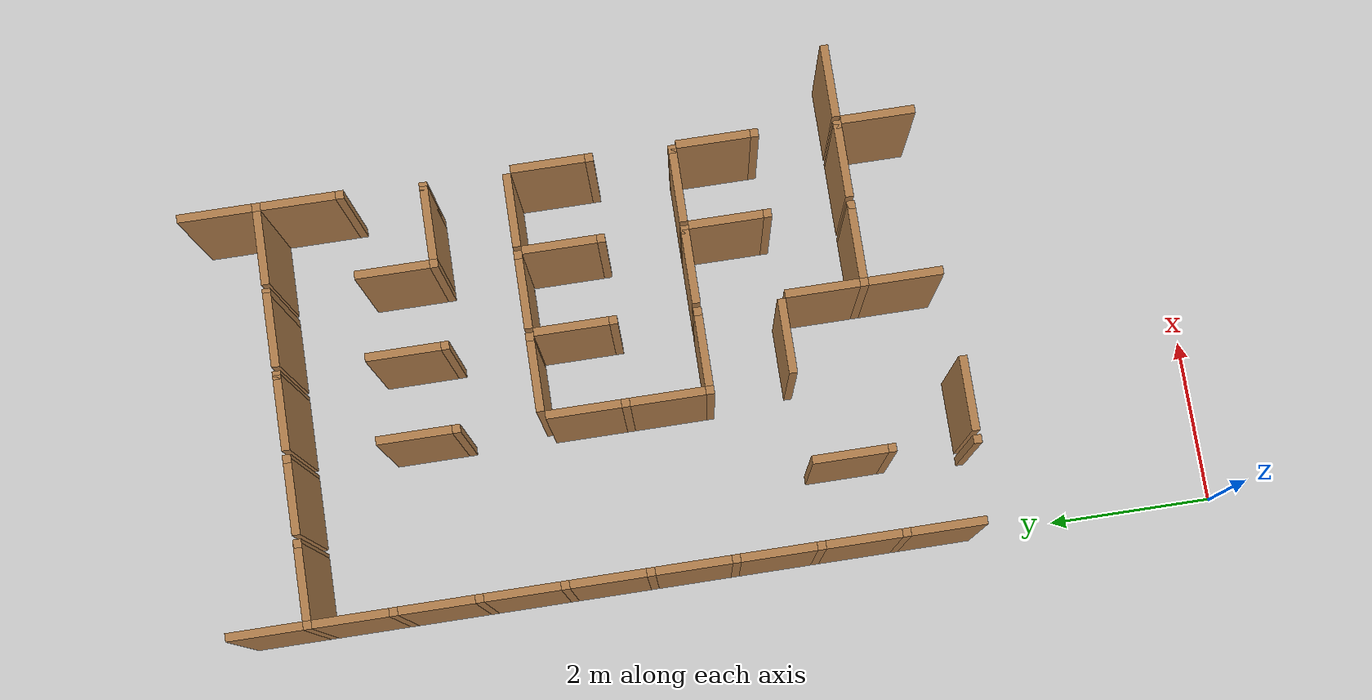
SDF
<sdf version="1.6">
 <world name="default">
  <include><uri>model://sun</uri></include>
  <model name="ground_plane">
   <static>true</static>
   <link name="link">
    <collision name="collision"><geometry><plane><size>12.0 12.0</size></plane></geometry></collision>
    <visual name="visual">
     <cast_shadows>false</cast_shadows>
     <geometry><plane><size>12.0 12.0</size></plane></geometry>
     <material>
      <script><uri>file://media/materials/scripts/gazebo.material</uri><name>Gazebo/Grey</name></script>
     </material>
    </visual>
   </link>
   <pose>6.0 6.0 0 0 0 0</pose>
  </model>
  <model name="vwall_3_0">
   <pose>0.0 3.5 1.0 0 0 0</pose>
   <link name="link">
    <collision name="collision"><geometry><box><size>0.1 0.9 2</size></box></geometry></collision>
    <visual name="visual">
     <geometry><box><size>0.1 0.9 2</size></box></geometry>
     <material>
      <script><uri>file://media/materials/scripts/gazebo.material</uri><name>Gazebo/Wood</name></script>
     </material>
    </visual>
   </link>
  </model>
  <model name="vwall_3_3">
   <pose>3.0 3.5 1.0 0 0 0</pose>
   <link name="link">
    <collision name="collision"><geometry><box><size>0.1 0.9 2</size></box></geometry></collision>
    <visual name="visual">
     <geometry><box><size>0.1 0.9 2</size></box></geometry>
     <material>
      <script><uri>file://media/materials/scripts/gazebo.material</uri><name>Gazebo/Wood</name></script>
     </material>
    </visual>
   </link>
  </model>
  <model name="vwall_3_5">
   <pose>5.0 3.5 1.0 0 0 0</pose>
   <link name="link">
    <collision name="collision"><geometry><box><size>0.1 0.9 2</size></box></geometry></collision>
    <visual name="visual">
     <geometry><box><size>0.1 0.9 2</size></box></geometry>
     <material>
      <script><uri>file://media/materials/scripts/gazebo.material</uri><name>Gazebo/Wood</name></script>
     </material>
    </visual>
   </link>
  </model>
  <model name="vwall_4_0">
   <pose>0.0 4.5 1.0 0 0 0</pose>
   <link name="link">
    <collision name="collision"><geometry><box><size>0.1 0.9 2</size></box></geometry></collision>
    <visual name="visual">
     <geometry><box><size>0.1 0.9 2</size></box></geometry>
     <material>
      <script><uri>file://media/materials/scripts/gazebo.material</uri><name>Gazebo/Wood</name></script>
     </material>
    </visual>
   </link>
  </model>
  <model name="joint_0.0_4.0">
   <pose>0.0 4.0 1.0 0 0 0</pose>
   <link name="link">
    <collision name="collision"><geometry><box><size>0.1 0.1 2</size></box></geometry></collision>
    <visual name="visual">
     <geometry><box><size>0.1 0.1 2</size></box></geometry>
     <material>
      <script><uri>file://media/materials/scripts/gazebo.material</uri><name>Gazebo/Wood</name></script>
     </material>
    </visual>
   </link>
  </model>
  <model name="vwall_4_1">
   <pose>1.0 4.5 1.0 0 0 0</pose>
   <link name="link">
    <collision name="collision"><geometry><box><size>0.1 0.9 2</size></box></geometry></collision>
    <visual name="visual">
     <geometry><box><size>0.1 0.9 2</size></box></geometry>
     <material>
      <script><uri>file://media/materials/scripts/gazebo.material</uri><name>Gazebo/Wood</name></script>
     </material>
    </visual>
   </link>
  </model>
  <model name="joint_1.0_4.0">
   <pose>1.0 4.0 1.0 0 0 0</pose>
   <link name="link">
    <collision name="collision"><geometry><box><size>0.1 0.1 2</size></box></geometry></collision>
    <visual name="visual">
     <geometry><box><size>0.1 0.1 2</size></box></geometry>
     <material>
      <script><uri>file://media/materials/scripts/gazebo.material</uri><name>Gazebo/Wood</name></script>
     </material>
    </visual>
   </link>
  </model>
  <model name="vwall_4_3">
   <pose>3.0 4.5 1.0 0 0 0</pose>
   <link name="link">
    <collision name="collision"><geometry><box><size>0.1 0.9 2</size></box></geometry></collision>
    <visual name="visual">
     <geometry><box><size>0.1 0.9 2</size></box></geometry>
     <material>
      <script><uri>file://media/materials/scripts/gazebo.material</uri><name>Gazebo/Wood</name></script>
     </material>
    </visual>
   </link>
  </model>
  <model name="joint_3.0_4.0">
   <pose>3.0 4.0 1.0 0 0 0</pose>
   <link name="link">
    <collision name="collision"><geometry><box><size>0.1 0.1 2</size></box></geometry></collision>
    <visual name="visual">
     <geometry><box><size>0.1 0.1 2</size></box></geometry>
     <material>
      <script><uri>file://media/materials/scripts/gazebo.material</uri><name>Gazebo/Wood</name></script>
     </material>
    </visual>
   </link>
  </model>
  <model name="vwall_5_0">
   <pose>0.0 5.5 1.0 0 0 0</pose>
   <link name="link">
    <collision name="collision"><geometry><box><size>0.1 0.9 2</size></box></geometry></collision>
    <visual name="visual">
     <geometry><box><size>0.1 0.9 2</size></box></geometry>
     <material>
      <script><uri>file://media/materials/scripts/gazebo.material</uri><name>Gazebo/Wood</name></script>
     </material>
    </visual>
   </link>
  </model>
  <model name="joint_0.0_5.0">
   <pose>0.0 5.0 1.0 0 0 0</pose>
   <link name="link">
    <collision name="collision"><geometry><box><size>0.1 0.1 2</size></box></geometry></collision>
    <visual name="visual">
     <geometry><box><size>0.1 0.1 2</size></box></geometry>
     <material>
      <script><uri>file://media/materials/scripts/gazebo.material</uri><name>Gazebo/Wood</name></script>
     </material>
    </visual>
   </link>
  </model>
  <model name="vwall_5_4">
   <pose>4.0 5.5 1.0 0 0 0</pose>
   <link name="link">
    <collision name="collision"><geometry><box><size>0.1 0.9 2</size></box></geometry></collision>
    <visual name="visual">
     <geometry><box><size>0.1 0.9 2</size></box></geometry>
     <material>
      <script><uri>file://media/materials/scripts/gazebo.material</uri><name>Gazebo/Wood</name></script>
     </material>
    </visual>
   </link>
  </model>
  <model name="joint_4.0_5.0">
   <pose>4.0 5.0 1.0 0 0 0</pose>
   <link name="link">
    <collision name="collision"><geometry><box><size>0.1 0.1 2</size></box></geometry></collision>
    <visual name="visual">
     <geometry><box><size>0.1 0.1 2</size></box></geometry>
     <material>
      <script><uri>file://media/materials/scripts/gazebo.material</uri><name>Gazebo/Wood</name></script>
     </material>
    </visual>
   </link>
  </model>
  <model name="vwall_5_5">
   <pose>5.0 5.5 1.0 0 0 0</pose>
   <link name="link">
    <collision name="collision"><geometry><box><size>0.1 0.9 2</size></box></geometry></collision>
    <visual name="visual">
     <geometry><box><size>0.1 0.9 2</size></box></geometry>
     <material>
      <script><uri>file://media/materials/scripts/gazebo.material</uri><name>Gazebo/Wood</name></script>
     </material>
    </visual>
   </link>
  </model>
  <model name="joint_5.0_5.0">
   <pose>5.0 5.0 1.0 0 0 0</pose>
   <link name="link">
    <collision name="collision"><geometry><box><size>0.1 0.1 2</size></box></geometry></collision>
    <visual name="visual">
     <geometry><box><size>0.1 0.1 2</size></box></geometry>
     <material>
      <script><uri>file://media/materials/scripts/gazebo.material</uri><name>Gazebo/Wood</name></script>
     </material>
    </visual>
   </link>
  </model>
  <model name="vwall_6_0">
   <pose>0.0 6.5 1.0 0 0 0</pose>
   <link name="link">
    <collision name="collision"><geometry><box><size>0.1 0.9 2</size></box></geometry></collision>
    <visual name="visual">
     <geometry><box><size>0.1 0.9 2</size></box></geometry>
     <material>
      <script><uri>file://media/materials/scripts/gazebo.material</uri><name>Gazebo/Wood</name></script>
     </material>
    </visual>
   </link>
  </model>
  <model name="joint_0.0_6.0">
   <pose>0.0 6.0 1.0 0 0 0</pose>
   <link name="link">
    <collision name="collision"><geometry><box><size>0.1 0.1 2</size></box></geometry></collision>
    <visual name="visual">
     <geometry><box><size>0.1 0.1 2</size></box></geometry>
     <material>
      <script><uri>file://media/materials/scripts/gazebo.material</uri><name>Gazebo/Wood</name></script>
     </material>
    </visual>
   </link>
  </model>
  <model name="vwall_6_2">
   <pose>2.0 6.5 1.0 0 0 0</pose>
   <link name="link">
    <collision name="collision"><geometry><box><size>0.1 0.9 2</size></box></geometry></collision>
    <visual name="visual">
     <geometry><box><size>0.1 0.9 2</size></box></geometry>
     <material>
      <script><uri>file://media/materials/scripts/gazebo.material</uri><name>Gazebo/Wood</name></script>
     </material>
    </visual>
   </link>
  </model>
  <model name="joint_2.0_6.0">
   <pose>2.0 6.0 1.0 0 0 0</pose>
   <link name="link">
    <collision name="collision"><geometry><box><size>0.1 0.1 2</size></box></geometry></collision>
    <visual name="visual">
     <geometry><box><size>0.1 0.1 2</size></box></geometry>
     <material>
      <script><uri>file://media/materials/scripts/gazebo.material</uri><name>Gazebo/Wood</name></script>
     </material>
    </visual>
   </link>
  </model>
  <model name="vwall_7_0">
   <pose>0.0 7.5 1.0 0 0 0</pose>
   <link name="link">
    <collision name="collision"><geometry><box><size>0.1 0.9 2</size></box></geometry></collision>
    <visual name="visual">
     <geometry><box><size>0.1 0.9 2</size></box></geometry>
     <material>
      <script><uri>file://media/materials/scripts/gazebo.material</uri><name>Gazebo/Wood</name></script>
     </material>
    </visual>
   </link>
  </model>
  <model name="joint_0.0_7.0">
   <pose>0.0 7.0 1.0 0 0 0</pose>
   <link name="link">
    <collision name="collision"><geometry><box><size>0.1 0.1 2</size></box></geometry></collision>
    <visual name="visual">
     <geometry><box><size>0.1 0.1 2</size></box></geometry>
     <material>
      <script><uri>file://media/materials/scripts/gazebo.material</uri><name>Gazebo/Wood</name></script>
     </material>
    </visual>
   </link>
  </model>
  <model name="vwall_7_2">
   <pose>2.0 7.5 1.0 0 0 0</pose>
   <link name="link">
    <collision name="collision"><geometry><box><size>0.1 0.9 2</size></box></geometry></collision>
    <visual name="visual">
     <geometry><box><size>0.1 0.9 2</size></box></geometry>
     <material>
      <script><uri>file://media/materials/scripts/gazebo.material</uri><name>Gazebo/Wood</name></script>
     </material>
    </visual>
   </link>
  </model>
  <model name="joint_2.0_7.0">
   <pose>2.0 7.0 1.0 0 0 0</pose>
   <link name="link">
    <collision name="collision"><geometry><box><size>0.1 0.1 2</size></box></geometry></collision>
    <visual name="visual">
     <geometry><box><size>0.1 0.1 2</size></box></geometry>
     <material>
      <script><uri>file://media/materials/scripts/gazebo.material</uri><name>Gazebo/Wood</name></script>
     </material>
    </visual>
   </link>
  </model>
  <model name="vwall_7_3">
   <pose>3.0 7.5 1.0 0 0 0</pose>
   <link name="link">
    <collision name="collision"><geometry><box><size>0.1 0.9 2</size></box></geometry></collision>
    <visual name="visual">
     <geometry><box><size>0.1 0.9 2</size></box></geometry>
     <material>
      <script><uri>file://media/materials/scripts/gazebo.material</uri><name>Gazebo/Wood</name></script>
     </material>
    </visual>
   </link>
  </model>
  <model name="joint_3.0_7.0">
   <pose>3.0 7.0 1.0 0 0 0</pose>
   <link name="link">
    <collision name="collision"><geometry><box><size>0.1 0.1 2</size></box></geometry></collision>
    <visual name="visual">
     <geometry><box><size>0.1 0.1 2</size></box></geometry>
     <material>
      <script><uri>file://media/materials/scripts/gazebo.material</uri><name>Gazebo/Wood</name></script>
     </material>
    </visual>
   </link>
  </model>
  <model name="vwall_7_4">
   <pose>4.0 7.5 1.0 0 0 0</pose>
   <link name="link">
    <collision name="collision"><geometry><box><size>0.1 0.9 2</size></box></geometry></collision>
    <visual name="visual">
     <geometry><box><size>0.1 0.9 2</size></box></geometry>
     <material>
      <script><uri>file://media/materials/scripts/gazebo.material</uri><name>Gazebo/Wood</name></script>
     </material>
    </visual>
   </link>
  </model>
  <model name="joint_4.0_7.0">
   <pose>4.0 7.0 1.0 0 0 0</pose>
   <link name="link">
    <collision name="collision"><geometry><box><size>0.1 0.1 2</size></box></geometry></collision>
    <visual name="visual">
     <geometry><box><size>0.1 0.1 2</size></box></geometry>
     <material>
      <script><uri>file://media/materials/scripts/gazebo.material</uri><name>Gazebo/Wood</name></script>
     </material>
    </visual>
   </link>
  </model>
  <model name="vwall_7_5">
   <pose>5.0 7.5 1.0 0 0 0</pose>
   <link name="link">
    <collision name="collision"><geometry><box><size>0.1 0.9 2</size></box></geometry></collision>
    <visual name="visual">
     <geometry><box><size>0.1 0.9 2</size></box></geometry>
     <material>
      <script><uri>file://media/materials/scripts/gazebo.material</uri><name>Gazebo/Wood</name></script>
     </material>
    </visual>
   </link>
  </model>
  <model name="joint_5.0_7.0">
   <pose>5.0 7.0 1.0 0 0 0</pose>
   <link name="link">
    <collision name="collision"><geometry><box><size>0.1 0.1 2</size></box></geometry></collision>
    <visual name="visual">
     <geometry><box><size>0.1 0.1 2</size></box></geometry>
     <material>
      <script><uri>file://media/materials/scripts/gazebo.material</uri><name>Gazebo/Wood</name></script>
     </material>
    </visual>
   </link>
  </model>
  <model name="vwall_8_0">
   <pose>0.0 8.5 1.0 0 0 0</pose>
   <link name="link">
    <collision name="collision"><geometry><box><size>0.1 0.9 2</size></box></geometry></collision>
    <visual name="visual">
     <geometry><box><size>0.1 0.9 2</size></box></geometry>
     <material>
      <script><uri>file://media/materials/scripts/gazebo.material</uri><name>Gazebo/Wood</name></script>
     </material>
    </visual>
   </link>
  </model>
  <model name="joint_0.0_8.0">
   <pose>0.0 8.0 1.0 0 0 0</pose>
   <link name="link">
    <collision name="collision"><geometry><box><size>0.1 0.1 2</size></box></geometry></collision>
    <visual name="visual">
     <geometry><box><size>0.1 0.1 2</size></box></geometry>
     <material>
      <script><uri>file://media/materials/scripts/gazebo.material</uri><name>Gazebo/Wood</name></script>
     </material>
    </visual>
   </link>
  </model>
  <model name="vwall_9_0">
   <pose>0.0 9.5 1.0 0 0 0</pose>
   <link name="link">
    <collision name="collision"><geometry><box><size>0.1 0.9 2</size></box></geometry></collision>
    <visual name="visual">
     <geometry><box><size>0.1 0.9 2</size></box></geometry>
     <material>
      <script><uri>file://media/materials/scripts/gazebo.material</uri><name>Gazebo/Wood</name></script>
     </material>
    </visual>
   </link>
  </model>
  <model name="joint_0.0_9.0">
   <pose>0.0 9.0 1.0 0 0 0</pose>
   <link name="link">
    <collision name="collision"><geometry><box><size>0.1 0.1 2</size></box></geometry></collision>
    <visual name="visual">
     <geometry><box><size>0.1 0.1 2</size></box></geometry>
     <material>
      <script><uri>file://media/materials/scripts/gazebo.material</uri><name>Gazebo/Wood</name></script>
     </material>
    </visual>
   </link>
  </model>
  <model name="vwall_9_2">
   <pose>2.0 9.5 1.0 0 0 0</pose>
   <link name="link">
    <collision name="collision"><geometry><box><size>0.1 0.9 2</size></box></geometry></collision>
    <visual name="visual">
     <geometry><box><size>0.1 0.9 2</size></box></geometry>
     <material>
      <script><uri>file://media/materials/scripts/gazebo.material</uri><name>Gazebo/Wood</name></script>
     </material>
    </visual>
   </link>
  </model>
  <model name="joint_2.0_9.0">
   <pose>2.0 9.0 1.0 0 0 0</pose>
   <link name="link">
    <collision name="collision"><geometry><box><size>0.1 0.1 2</size></box></geometry></collision>
    <visual name="visual">
     <geometry><box><size>0.1 0.1 2</size></box></geometry>
     <material>
      <script><uri>file://media/materials/scripts/gazebo.material</uri><name>Gazebo/Wood</name></script>
     </material>
    </visual>
   </link>
  </model>
  <model name="vwall_9_3">
   <pose>3.0 9.5 1.0 0 0 0</pose>
   <link name="link">
    <collision name="collision"><geometry><box><size>0.1 0.9 2</size></box></geometry></collision>
    <visual name="visual">
     <geometry><box><size>0.1 0.9 2</size></box></geometry>
     <material>
      <script><uri>file://media/materials/scripts/gazebo.material</uri><name>Gazebo/Wood</name></script>
     </material>
    </visual>
   </link>
  </model>
  <model name="joint_3.0_9.0">
   <pose>3.0 9.0 1.0 0 0 0</pose>
   <link name="link">
    <collision name="collision"><geometry><box><size>0.1 0.1 2</size></box></geometry></collision>
    <visual name="visual">
     <geometry><box><size>0.1 0.1 2</size></box></geometry>
     <material>
      <script><uri>file://media/materials/scripts/gazebo.material</uri><name>Gazebo/Wood</name></script>
     </material>
    </visual>
   </link>
  </model>
  <model name="vwall_9_4">
   <pose>4.0 9.5 1.0 0 0 0</pose>
   <link name="link">
    <collision name="collision"><geometry><box><size>0.1 0.9 2</size></box></geometry></collision>
    <visual name="visual">
     <geometry><box><size>0.1 0.9 2</size></box></geometry>
     <material>
      <script><uri>file://media/materials/scripts/gazebo.material</uri><name>Gazebo/Wood</name></script>
     </material>
    </visual>
   </link>
  </model>
  <model name="joint_4.0_9.0">
   <pose>4.0 9.0 1.0 0 0 0</pose>
   <link name="link">
    <collision name="collision"><geometry><box><size>0.1 0.1 2</size></box></geometry></collision>
    <visual name="visual">
     <geometry><box><size>0.1 0.1 2</size></box></geometry>
     <material>
      <script><uri>file://media/materials/scripts/gazebo.material</uri><name>Gazebo/Wood</name></script>
     </material>
    </visual>
   </link>
  </model>
  <model name="vwall_10_0">
   <pose>0.0 10.5 1.0 0 0 0</pose>
   <link name="link">
    <collision name="collision"><geometry><box><size>0.1 0.9 2</size></box></geometry></collision>
    <visual name="visual">
     <geometry><box><size>0.1 0.9 2</size></box></geometry>
     <material>
      <script><uri>file://media/materials/scripts/gazebo.material</uri><name>Gazebo/Wood</name></script>
     </material>
    </visual>
   </link>
  </model>
  <model name="joint_0.0_10.0">
   <pose>0.0 10.0 1.0 0 0 0</pose>
   <link name="link">
    <collision name="collision"><geometry><box><size>0.1 0.1 2</size></box></geometry></collision>
    <visual name="visual">
     <geometry><box><size>0.1 0.1 2</size></box></geometry>
     <material>
      <script><uri>file://media/materials/scripts/gazebo.material</uri><name>Gazebo/Wood</name></script>
     </material>
    </visual>
   </link>
  </model>
  <model name="vwall_10_5">
   <pose>5.0 10.5 1.0 0 0 0</pose>
   <link name="link">
    <collision name="collision"><geometry><box><size>0.1 0.9 2</size></box></geometry></collision>
    <visual name="visual">
     <geometry><box><size>0.1 0.9 2</size></box></geometry>
     <material>
      <script><uri>file://media/materials/scripts/gazebo.material</uri><name>Gazebo/Wood</name></script>
     </material>
    </visual>
   </link>
  </model>
  <model name="joint_5.0_10.0">
   <pose>5.0 10.0 1.0 0 0 0</pose>
   <link name="link">
    <collision name="collision"><geometry><box><size>0.1 0.1 2</size></box></geometry></collision>
    <visual name="visual">
     <geometry><box><size>0.1 0.1 2</size></box></geometry>
     <material>
      <script><uri>file://media/materials/scripts/gazebo.material</uri><name>Gazebo/Wood</name></script>
     </material>
    </visual>
   </link>
  </model>
  <model name="vwall_11_0">
   <pose>0.0 11.5 1.0 0 0 0</pose>
   <link name="link">
    <collision name="collision"><geometry><box><size>0.1 0.9 2</size></box></geometry></collision>
    <visual name="visual">
     <geometry><box><size>0.1 0.9 2</size></box></geometry>
     <material>
      <script><uri>file://media/materials/scripts/gazebo.material</uri><name>Gazebo/Wood</name></script>
     </material>
    </visual>
   </link>
  </model>
  <model name="joint_0.0_11.0">
   <pose>0.0 11.0 1.0 0 0 0</pose>
   <link name="link">
    <collision name="collision"><geometry><box><size>0.1 0.1 2</size></box></geometry></collision>
    <visual name="visual">
     <geometry><box><size>0.1 0.1 2</size></box></geometry>
     <material>
      <script><uri>file://media/materials/scripts/gazebo.material</uri><name>Gazebo/Wood</name></script>
     </material>
    </visual>
   </link>
  </model>
  <model name="vwall_11_5">
   <pose>5.0 11.5 1.0 0 0 0</pose>
   <link name="link">
    <collision name="collision"><geometry><box><size>0.1 0.9 2</size></box></geometry></collision>
    <visual name="visual">
     <geometry><box><size>0.1 0.9 2</size></box></geometry>
     <material>
      <script><uri>file://media/materials/scripts/gazebo.material</uri><name>Gazebo/Wood</name></script>
     </material>
    </visual>
   </link>
  </model>
  <model name="joint_5.0_11.0">
   <pose>5.0 11.0 1.0 0 0 0</pose>
   <link name="link">
    <collision name="collision"><geometry><box><size>0.1 0.1 2</size></box></geometry></collision>
    <visual name="visual">
     <geometry><box><size>0.1 0.1 2</size></box></geometry>
     <material>
      <script><uri>file://media/materials/scripts/gazebo.material</uri><name>Gazebo/Wood</name></script>
     </material>
    </visual>
   </link>
  </model>
  <model name="joint_0.95_3.0">
   <pose>0.95 3.0 1.0 0 0 0</pose>
   <link name="link">
    <collision name="collision"><geometry><box><size>0.1 0.1 2</size></box></geometry></collision>
    <visual name="visual">
     <geometry><box><size>0.1 0.1 2</size></box></geometry>
     <material>
      <script><uri>file://media/materials/scripts/gazebo.material</uri><name>Gazebo/Wood</name></script>
     </material>
    </visual>
   </link>
  </model>
  <model name="hwall_3_1">
   <pose>1.5 3.0 1.0 0 0 0</pose>
   <link name="link">
    <collision name="collision"><geometry><box><size>0.9 0.1 2</size></box></geometry></collision>
    <visual name="visual">
     <geometry><box><size>0.9 0.1 2</size></box></geometry>
     <material>
      <script><uri>file://media/materials/scripts/gazebo.material</uri><name>Gazebo/Wood</name></script>
     </material>
    </visual>
   </link>
  </model>
  <model name="hwall_4_3">
   <pose>3.5 4.0 1.0 0 0 0</pose>
   <link name="link">
    <collision name="collision"><geometry><box><size>0.9 0.1 2</size></box></geometry></collision>
    <visual name="visual">
     <geometry><box><size>0.9 0.1 2</size></box></geometry>
     <material>
      <script><uri>file://media/materials/scripts/gazebo.material</uri><name>Gazebo/Wood</name></script>
     </material>
    </visual>
   </link>
  </model>
  <model name="joint_3.95_4.0">
   <pose>3.95 4.0 1.0 0 0 0</pose>
   <link name="link">
    <collision name="collision"><geometry><box><size>0.1 0.1 2</size></box></geometry></collision>
    <visual name="visual">
     <geometry><box><size>0.1 0.1 2</size></box></geometry>
     <material>
      <script><uri>file://media/materials/scripts/gazebo.material</uri><name>Gazebo/Wood</name></script>
     </material>
    </visual>
   </link>
  </model>
  <model name="hwall_4_4">
   <pose>4.5 4.0 1.0 0 0 0</pose>
   <link name="link">
    <collision name="collision"><geometry><box><size>0.9 0.1 2</size></box></geometry></collision>
    <visual name="visual">
     <geometry><box><size>0.9 0.1 2</size></box></geometry>
     <material>
      <script><uri>file://media/materials/scripts/gazebo.material</uri><name>Gazebo/Wood</name></script>
     </material>
    </visual>
   </link>
  </model>
  <model name="joint_4.95_4.0">
   <pose>4.95 4.0 1.0 0 0 0</pose>
   <link name="link">
    <collision name="collision"><geometry><box><size>0.1 0.1 2</size></box></geometry></collision>
    <visual name="visual">
     <geometry><box><size>0.1 0.1 2</size></box></geometry>
     <material>
      <script><uri>file://media/materials/scripts/gazebo.material</uri><name>Gazebo/Wood</name></script>
     </material>
    </visual>
   </link>
  </model>
  <model name="hwall_4_5">
   <pose>5.5 4.0 1.0 0 0 0</pose>
   <link name="link">
    <collision name="collision"><geometry><box><size>0.9 0.1 2</size></box></geometry></collision>
    <visual name="visual">
     <geometry><box><size>0.9 0.1 2</size></box></geometry>
     <material>
      <script><uri>file://media/materials/scripts/gazebo.material</uri><name>Gazebo/Wood</name></script>
     </material>
    </visual>
   </link>
  </model>
  <model name="hwall_5_2">
   <pose>2.5 5.0 1.0 0 0 0</pose>
   <link name="link">
    <collision name="collision"><geometry><box><size>0.9 0.1 2</size></box></geometry></collision>
    <visual name="visual">
     <geometry><box><size>0.9 0.1 2</size></box></geometry>
     <material>
      <script><uri>file://media/materials/scripts/gazebo.material</uri><name>Gazebo/Wood</name></script>
     </material>
    </visual>
   </link>
  </model>
  <model name="hwall_6_2">
   <pose>2.5 6.0 1.0 0 0 0</pose>
   <link name="link">
    <collision name="collision"><geometry><box><size>0.9 0.1 2</size></box></geometry></collision>
    <visual name="visual">
     <geometry><box><size>0.9 0.1 2</size></box></geometry>
     <material>
      <script><uri>file://media/materials/scripts/gazebo.material</uri><name>Gazebo/Wood</name></script>
     </material>
    </visual>
   </link>
  </model>
  <model name="joint_2.95_6.0">
   <pose>2.95 6.0 1.0 0 0 0</pose>
   <link name="link">
    <collision name="collision"><geometry><box><size>0.1 0.1 2</size></box></geometry></collision>
    <visual name="visual">
     <geometry><box><size>0.1 0.1 2</size></box></geometry>
     <material>
      <script><uri>file://media/materials/scripts/gazebo.material</uri><name>Gazebo/Wood</name></script>
     </material>
    </visual>
   </link>
  </model>
  <model name="hwall_6_3">
   <pose>3.5 6.0 1.0 0 0 0</pose>
   <link name="link">
    <collision name="collision"><geometry><box><size>0.9 0.1 2</size></box></geometry></collision>
    <visual name="visual">
     <geometry><box><size>0.9 0.1 2</size></box></geometry>
     <material>
      <script><uri>file://media/materials/scripts/gazebo.material</uri><name>Gazebo/Wood</name></script>
     </material>
    </visual>
   </link>
  </model>
  <model name="joint_3.95_6.0">
   <pose>3.95 6.0 1.0 0 0 0</pose>
   <link name="link">
    <collision name="collision"><geometry><box><size>0.1 0.1 2</size></box></geometry></collision>
    <visual name="visual">
     <geometry><box><size>0.1 0.1 2</size></box></geometry>
     <material>
      <script><uri>file://media/materials/scripts/gazebo.material</uri><name>Gazebo/Wood</name></script>
     </material>
    </visual>
   </link>
  </model>
  <model name="hwall_6_4">
   <pose>4.5 6.0 1.0 0 0 0</pose>
   <link name="link">
    <collision name="collision"><geometry><box><size>0.9 0.1 2</size></box></geometry></collision>
    <visual name="visual">
     <geometry><box><size>0.9 0.1 2</size></box></geometry>
     <material>
      <script><uri>file://media/materials/scripts/gazebo.material</uri><name>Gazebo/Wood</name></script>
     </material>
    </visual>
   </link>
  </model>
  <model name="joint_4.95_6.0">
   <pose>4.95 6.0 1.0 0 0 0</pose>
   <link name="link">
    <collision name="collision"><geometry><box><size>0.1 0.1 2</size></box></geometry></collision>
    <visual name="visual">
     <geometry><box><size>0.1 0.1 2</size></box></geometry>
     <material>
      <script><uri>file://media/materials/scripts/gazebo.material</uri><name>Gazebo/Wood</name></script>
     </material>
    </visual>
   </link>
  </model>
  <model name="hwall_8_2">
   <pose>2.5 8.0 1.0 0 0 0</pose>
   <link name="link">
    <collision name="collision"><geometry><box><size>0.9 0.1 2</size></box></geometry></collision>
    <visual name="visual">
     <geometry><box><size>0.9 0.1 2</size></box></geometry>
     <material>
      <script><uri>file://media/materials/scripts/gazebo.material</uri><name>Gazebo/Wood</name></script>
     </material>
    </visual>
   </link>
  </model>
  <model name="joint_2.95_8.0">
   <pose>2.95 8.0 1.0 0 0 0</pose>
   <link name="link">
    <collision name="collision"><geometry><box><size>0.1 0.1 2</size></box></geometry></collision>
    <visual name="visual">
     <geometry><box><size>0.1 0.1 2</size></box></geometry>
     <material>
      <script><uri>file://media/materials/scripts/gazebo.material</uri><name>Gazebo/Wood</name></script>
     </material>
    </visual>
   </link>
  </model>
  <model name="hwall_8_3">
   <pose>3.5 8.0 1.0 0 0 0</pose>
   <link name="link">
    <collision name="collision"><geometry><box><size>0.9 0.1 2</size></box></geometry></collision>
    <visual name="visual">
     <geometry><box><size>0.9 0.1 2</size></box></geometry>
     <material>
      <script><uri>file://media/materials/scripts/gazebo.material</uri><name>Gazebo/Wood</name></script>
     </material>
    </visual>
   </link>
  </model>
  <model name="joint_3.95_8.0">
   <pose>3.95 8.0 1.0 0 0 0</pose>
   <link name="link">
    <collision name="collision"><geometry><box><size>0.1 0.1 2</size></box></geometry></collision>
    <visual name="visual">
     <geometry><box><size>0.1 0.1 2</size></box></geometry>
     <material>
      <script><uri>file://media/materials/scripts/gazebo.material</uri><name>Gazebo/Wood</name></script>
     </material>
    </visual>
   </link>
  </model>
  <model name="hwall_8_4">
   <pose>4.5 8.0 1.0 0 0 0</pose>
   <link name="link">
    <collision name="collision"><geometry><box><size>0.9 0.1 2</size></box></geometry></collision>
    <visual name="visual">
     <geometry><box><size>0.9 0.1 2</size></box></geometry>
     <material>
      <script><uri>file://media/materials/scripts/gazebo.material</uri><name>Gazebo/Wood</name></script>
     </material>
    </visual>
   </link>
  </model>
  <model name="hwall_9_4">
   <pose>4.5 9.0 1.0 0 0 0</pose>
   <link name="link">
    <collision name="collision"><geometry><box><size>0.9 0.1 2</size></box></geometry></collision>
    <visual name="visual">
     <geometry><box><size>0.9 0.1 2</size></box></geometry>
     <material>
      <script><uri>file://media/materials/scripts/gazebo.material</uri><name>Gazebo/Wood</name></script>
     </material>
    </visual>
   </link>
  </model>
  <model name="joint_4.95_9.0">
   <pose>4.95 9.0 1.0 0 0 0</pose>
   <link name="link">
    <collision name="collision"><geometry><box><size>0.1 0.1 2</size></box></geometry></collision>
    <visual name="visual">
     <geometry><box><size>0.1 0.1 2</size></box></geometry>
     <material>
      <script><uri>file://media/materials/scripts/gazebo.material</uri><name>Gazebo/Wood</name></script>
     </material>
    </visual>
   </link>
  </model>
  <model name="hwall_11_0">
   <pose>0.5 11.0 1.0 0 0 0</pose>
   <link name="link">
    <collision name="collision"><geometry><box><size>0.9 0.1 2</size></box></geometry></collision>
    <visual name="visual">
     <geometry><box><size>0.9 0.1 2</size></box></geometry>
     <material>
      <script><uri>file://media/materials/scripts/gazebo.material</uri><name>Gazebo/Wood</name></script>
     </material>
    </visual>
   </link>
  </model>
  <model name="joint_0.95_11.0">
   <pose>0.95 11.0 1.0 0 0 0</pose>
   <link name="link">
    <collision name="collision"><geometry><box><size>0.1 0.1 2</size></box></geometry></collision>
    <visual name="visual">
     <geometry><box><size>0.1 0.1 2</size></box></geometry>
     <material>
      <script><uri>file://media/materials/scripts/gazebo.material</uri><name>Gazebo/Wood</name></script>
     </material>
    </visual>
   </link>
  </model>
  <model name="hwall_11_1">
   <pose>1.5 11.0 1.0 0 0 0</pose>
   <link name="link">
    <collision name="collision"><geometry><box><size>0.9 0.1 2</size></box></geometry></collision>
    <visual name="visual">
     <geometry><box><size>0.9 0.1 2</size></box></geometry>
     <material>
      <script><uri>file://media/materials/scripts/gazebo.material</uri><name>Gazebo/Wood</name></script>
     </material>
    </visual>
   </link>
  </model>
  <model name="joint_1.95_11.0">
   <pose>1.95 11.0 1.0 0 0 0</pose>
   <link name="link">
    <collision name="collision"><geometry><box><size>0.1 0.1 2</size></box></geometry></collision>
    <visual name="visual">
     <geometry><box><size>0.1 0.1 2</size></box></geometry>
     <material>
      <script><uri>file://media/materials/scripts/gazebo.material</uri><name>Gazebo/Wood</name></script>
     </material>
    </visual>
   </link>
  </model>
  <model name="hwall_11_2">
   <pose>2.5 11.0 1.0 0 0 0</pose>
   <link name="link">
    <collision name="collision"><geometry><box><size>0.9 0.1 2</size></box></geometry></collision>
    <visual name="visual">
     <geometry><box><size>0.9 0.1 2</size></box></geometry>
     <material>
      <script><uri>file://media/materials/scripts/gazebo.material</uri><name>Gazebo/Wood</name></script>
     </material>
    </visual>
   </link>
  </model>
  <model name="joint_2.95_11.0">
   <pose>2.95 11.0 1.0 0 0 0</pose>
   <link name="link">
    <collision name="collision"><geometry><box><size>0.1 0.1 2</size></box></geometry></collision>
    <visual name="visual">
     <geometry><box><size>0.1 0.1 2</size></box></geometry>
     <material>
      <script><uri>file://media/materials/scripts/gazebo.material</uri><name>Gazebo/Wood</name></script>
     </material>
    </visual>
   </link>
  </model>
  <model name="hwall_11_3">
   <pose>3.5 11.0 1.0 0 0 0</pose>
   <link name="link">
    <collision name="collision"><geometry><box><size>0.9 0.1 2</size></box></geometry></collision>
    <visual name="visual">
     <geometry><box><size>0.9 0.1 2</size></box></geometry>
     <material>
      <script><uri>file://media/materials/scripts/gazebo.material</uri><name>Gazebo/Wood</name></script>
     </material>
    </visual>
   </link>
  </model>
  <model name="joint_3.95_11.0">
   <pose>3.95 11.0 1.0 0 0 0</pose>
   <link name="link">
    <collision name="collision"><geometry><box><size>0.1 0.1 2</size></box></geometry></collision>
    <visual name="visual">
     <geometry><box><size>0.1 0.1 2</size></box></geometry>
     <material>
      <script><uri>file://media/materials/scripts/gazebo.material</uri><name>Gazebo/Wood</name></script>
     </material>
    </visual>
   </link>
  </model>
  <model name="hwall_11_4">
   <pose>4.5 11.0 1.0 0 0 0</pose>
   <link name="link">
    <collision name="collision"><geometry><box><size>0.9 0.1 2</size></box></geometry></collision>
    <visual name="visual">
     <geometry><box><size>0.9 0.1 2</size></box></geometry>
     <material>
      <script><uri>file://media/materials/scripts/gazebo.material</uri><name>Gazebo/Wood</name></script>
     </material>
    </visual>
   </link>
  </model>
 </world>
</sdf>
